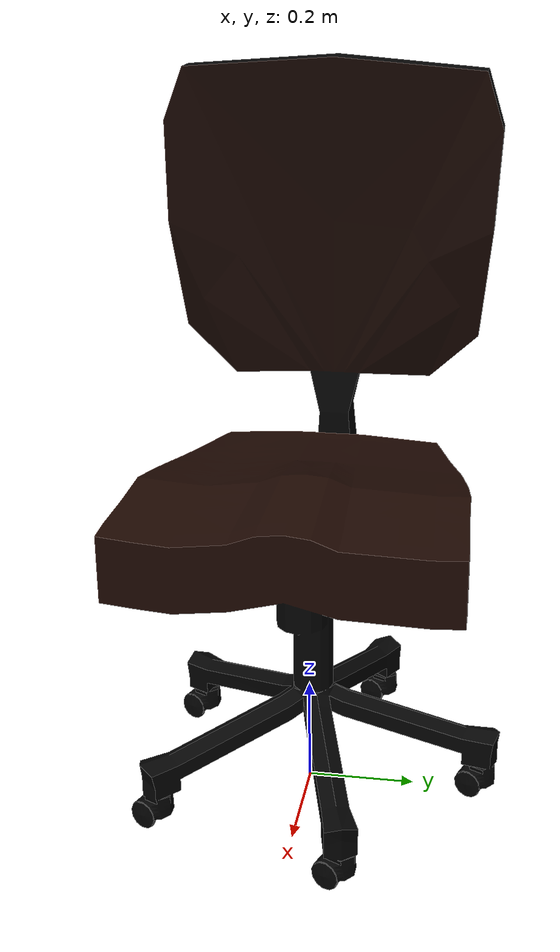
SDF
<?xml version="1.0" ?>
<sdf version="1.6">
  <model name="officeChair">
    <static>true</static>
    <link name="link">
      <collision name="collision">
        <geometry>
          <mesh>
            <scale>1 1 1</scale>
            <uri>model://officeChair/meshes/officeChair.dae</uri>
          </mesh>
        </geometry>
      </collision>
      <visual name="visual">
        <geometry>
          <mesh>
            <scale>1 1 1</scale>
            <uri>model://officeChair/meshes/officeChair.dae</uri>
          </mesh>
        </geometry>
      </visual>
    </link>
  </model>
</sdf>
